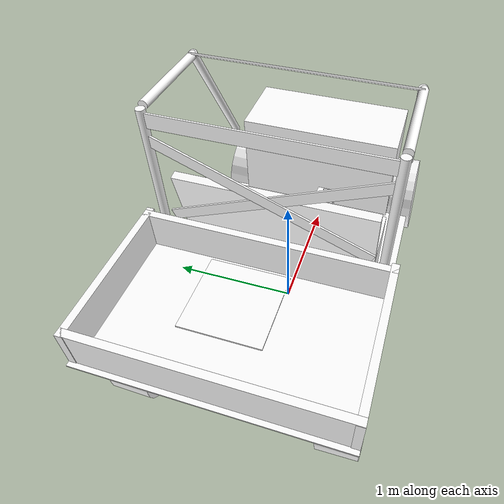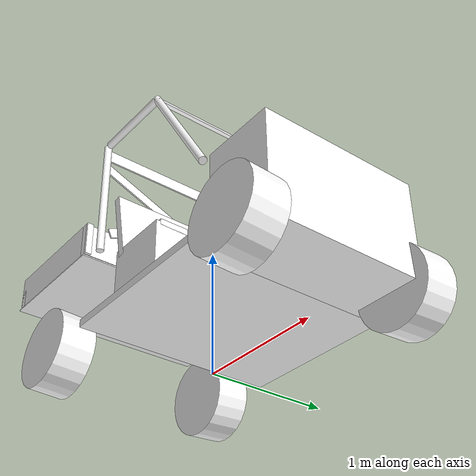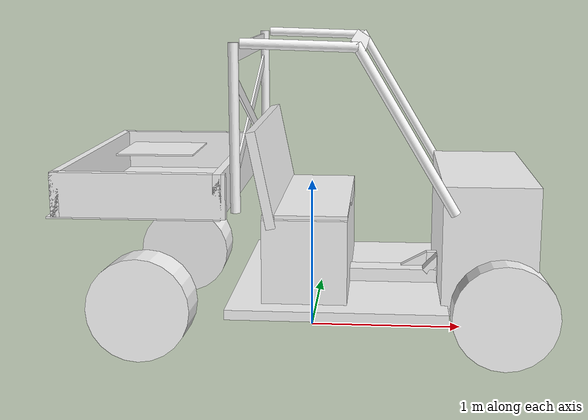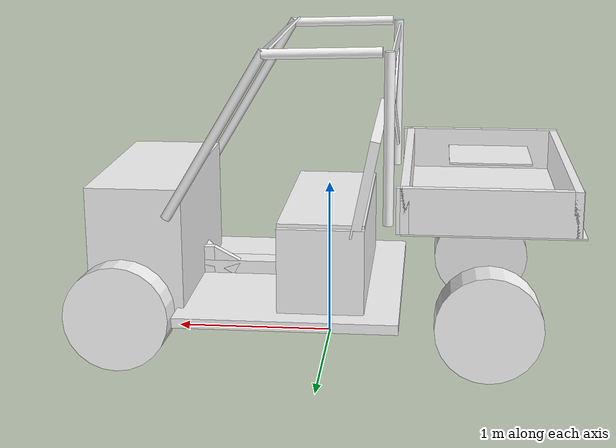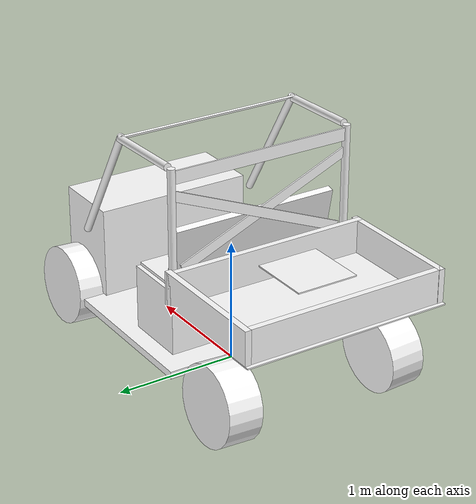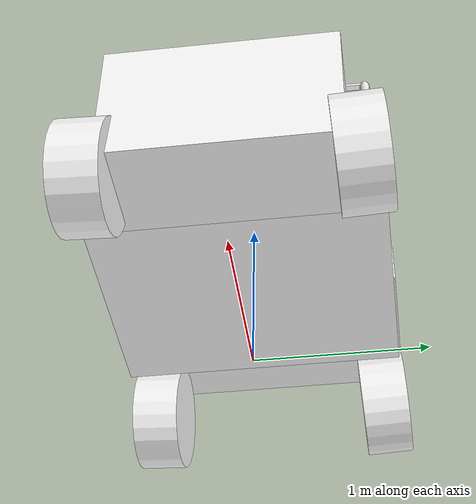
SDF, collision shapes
<?xml version="1.0" ?>
<sdf version="1.5">
  <model name="rover_land_pad">
    <include>
      <name>rover</name>
      <pose>0 0 0 0 0 0</pose>
      <uri>model://rover/model.sdf</uri>
    </include>

    <include>
      <name>land_pad</name>
      <pose>-1.0 0 1.2 0 0 0</pose>
      <uri>model://land_pad/land_pad.sdf</uri>
    </include>

    <joint name="land_pad_joint" type="fixed">
      <parent>rover</parent>
      <child>land_pad</child>
      <axis>
        <xyz>0 1 0</xyz>
      </axis>
    </joint>

  </model>
</sdf>

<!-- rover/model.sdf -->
<sdf version="1.5">
  <model name="rover">
    <static>false</static>
    <link name="base_link">
      <inertial>
        <!-- subtracted wheel weights from dry weight of 771 kg -->
        <!-- http://www.polaris.com/en-us/ranger-utv/side-by-sides/ranger-ev/specifications -->
        <mass>720.0</mass>
        <inertia>
          <ixx>140</ixx>
          <ixy>0.0</ixy>
          <iyy>550</iyy>
          <ixz>0.0</ixz>
          <iyz>0.0</iyz>
          <izz>550</izz>
        </inertia>
        <!-- chassis c.o.g. near lateral/longitudinal center, height of 0.4 m -->
        <pose>0.1 0 0.4 0 0 0</pose>
      </inertial>
      <visual name="visual">
        <pose>0 0 0 0 0 -1.570796</pose>
        <geometry>
          <mesh>
            <uri>model://rover/meshes/polaris.dae</uri>
            <submesh>
              <name>Body</name>
              <center>false</center>
            </submesh>
          </mesh>
        </geometry>
        <material>
          <diffuse>1.0 1.0 1.0</diffuse>
          <specular>1.0 1.0 1.0</specular>
          <pbr>
            <metal>
              <albedo_map>model://rover/materials/textures/RangerXP900_Diffuse.png</albedo_map>
            </metal>
          </pbr>
        </material>
      </visual>
      <collision name="base_link_bottom">
        <pose>0.2 0.0 0.335 0 0 0</pose>
        <geometry>
          <box>
            <size>1.34 1.65746 0.06</size>
          </box>
        </geometry>
      </collision>
      <collision name="cargo_bottom">
        <pose>-1.0 0.0 0.921 0.0 0.0 0.0</pose>
        <geometry>
          <box>
            <size>1.04609 1.6998 0.01</size>
          </box>
        </geometry>
      </collision>
      <collision name="cargo_front">
        <pose>-0.495 0.0 1.06 0.0 0.0 0.0</pose>
        <geometry>
          <box>
            <size>0.05 1.69982 0.27</size>
          </box>
        </geometry>
      </collision>
      <collision name="cargo_back">
        <pose>-1.465 0.0 1.06 0.0 0.0 0.0</pose>
        <geometry>
          <box>
            <size>0.05 1.69982 0.27</size>
          </box>
        </geometry>
      </collision>
      <collision name="cargo_left">
        <pose>-0.97 0.82491 1.06 0.0 0.0 0.0</pose>
        <geometry>
          <box>
            <size>1.04609 0.05 0.27</size>
          </box>
        </geometry>
      </collision>
      <collision name="cargo_right">
        <pose>-0.97 -0.82491 1.06 0.0 0.0 0.0</pose>
        <geometry>
          <box>
            <size>1.04609 0.05 0.27</size>
          </box>
        </geometry>
      </collision>
      <collision name="seat">
        <pose>0.0 0.0 0.62 0 0 0</pose>
        <geometry>
          <box>
            <size>0.52167 1.37206 0.53369</size>
          </box>
        </geometry>
        <surface>
          <contact>
            <ode>
              <min_depth>0.01</min_depth>
            </ode>
          </contact>
        </surface>
      </collision>
      <collision name="mud_seat">
        <pose>0.0 0.0 0.86 0 0 0</pose>
        <geometry>
          <box>
            <size>0.52167 1.30 0.1</size>
          </box>
        </geometry>
        <surface>
          <contact>
            <collide_without_contact>true</collide_without_contact>
          </contact>
        </surface>
      </collision>
      <sensor name="seat_contact" type="contact">
        <always_on>true</always_on>
        <update_rate>1000</update_rate>
        <contact>
          <collision>mud_seat</collision>
        </contact>
      </sensor>
      <collision name="seat_back">
        <pose>-0.26 0.0 1.125 0.0 -0.2 0.0</pose>
        <geometry>
          <box>
            <size>0.06 1.37206 0.6</size>
          </box>
        </geometry>
      </collision>
      <collision name="engine">
        <pose>1.12 0.0 0.7 0.0 0.0 0.0</pose>
        <geometry>
          <box>
            <size>0.58 1.3 0.8</size>
          </box>
        </geometry>
      </collision>
      <collision name="rollcage_top_left">
        <pose>-0.02 0.76 1.936 0 1.60 0</pose>
        <geometry>
          <cylinder>
            <radius>0.03</radius>
            <length>0.68</length>
          </cylinder>
        </geometry>
      </collision>
      <collision name="rollcage_top_right">
        <pose>-0.02 -0.76 1.936 0 1.60 0</pose>
        <geometry>
          <cylinder>
            <radius>0.03</radius>
            <length>0.68</length>
          </cylinder>
        </geometry>
      </collision>
      <collision name="rollcage_top_front">
        <pose>0.315 0.0 1.93 0 -1.0 0</pose>
        <geometry>
          <box>
            <size>0.01299 1.54 0.10226</size>
          </box>
        </geometry>
      </collision>
      <collision name="rollcage_top_back">
        <pose>-0.410 0.0 1.88 0 0 0</pose>
        <geometry>
          <box>
            <size>0.01299 1.54 0.10226</size>
          </box>
        </geometry>
      </collision>
      <collision name="rollcage_front_left">
        <pose>0.602 0.755 1.45 0 -0.54 0</pose>
        <geometry>
          <cylinder>
            <radius>0.03</radius>
            <length>1.15</length>
          </cylinder>
        </geometry>
      </collision>
      <collision name="rollcage_front_right">
        <pose>0.602 -0.755 1.45 0 -0.54 0</pose>
        <geometry>
          <cylinder>
            <radius>0.03</radius>
            <length>1.15</length>
          </cylinder>
        </geometry>
      </collision>
      <collision name="rollcage_back_left">
        <pose>-0.4 0.755 1.45 0 0 0</pose>
        <geometry>
          <cylinder>
            <radius>0.03</radius>
            <length>1.00</length>
          </cylinder>
        </geometry>
      </collision>
      <collision name="rollcage_back_right">
        <pose>-0.4 -0.755 1.45 0 0 0</pose>
        <geometry>
          <cylinder>
            <radius>0.03</radius>
            <length>1.00</length>
          </cylinder>
        </geometry>
      </collision>
      <collision name="rollcage_X_1">
        <pose>-0.411 0.04 1.445 0.397 0 0</pose>
        <geometry>
          <box>
            <size>0.01392 1.557245 0.078</size>
          </box>
        </geometry>
      </collision>
      <collision name="rollcage_X_2">
        <pose>-0.40 -0.04 1.445 -0.397 0 0</pose>
        <geometry>
          <box>
            <size>0.01392 1.557245 0.078</size>
          </box>
        </geometry>
      </collision>
      <collision name="central_hump1_collision">
        <pose>0.55 -0.1 0.4 0 0 0</pose>
        <geometry>
          <box>
            <size>0.6 0.15 0.1</size>
          </box>
        </geometry>
      </collision>
      <collision name="central_hump2_collision">
        <pose>0.7 -0.05 0.45 0 -0.5 0</pose>
        <geometry>
          <box>
            <size>0.20 0.05 0.1</size>
          </box>
        </geometry>
      </collision>
      <collision name="central_hump3_collision">
        <pose>0.798 -0.125 0.478 0 -0.8 0</pose>
        <geometry>
          <box>
            <size>0.129 0.1 0.05</size>
          </box>
        </geometry>
      </collision>
      <collision name="central_hump4_collision">
        <pose>0.8135 -0.05 0.45 0 0 0</pose>
        <geometry>
          <box>
            <size>0.10 0.05 0.1835</size>
          </box>
        </geometry>
      </collision>
      <collision name="central_hump5_collision">
        <pose>0.84 -0.125 0.45 0 0 0</pose>
        <geometry>
          <box>
            <size>0.03 0.1 0.1835</size>
          </box>
        </geometry>
      </collision>
      <collision name="central_hump6_collision">
        <pose>0.82 -0.125 0.475 0 0 0</pose>
        <geometry>
          <box>
            <size>0.03 0.1 0.05</size>
          </box>
        </geometry>
      </collision>
      <visual name="cargo_visual">
        <pose>-1.0 0 1.03230 0 0 -1.5707</pose>
        <geometry>
          <mesh>
            <uri>model://rover/meshes/polaris.dae</uri>
            <submesh>
              <name>Bed</name>
              <center>true</center>
            </submesh>
          </mesh>
        </geometry>
        <material>
          <diffuse>1.0 1.0 1.0</diffuse>
          <specular>1.0 1.0 1.0</specular>
          <pbr>
            <metal>
              <albedo_map>model://rover/materials/textures/RangerXP900_Diffuse.png</albedo_map>
            </metal>
          </pbr>
        </material>
      </visual>
      <visual name="tailgate_visual">
        <pose>-1.492 0 1.03 0 0 -1.5707</pose>
        <geometry>
          <mesh>
            <uri>model://rover/meshes/polaris.dae</uri>
            <submesh>
              <name>Tail_Gate</name>
              <center>true</center>
            </submesh>
          </mesh>
        </geometry>
        <material>
          <diffuse>1.0 1.0 1.0</diffuse>
          <specular>1.0 1.0 1.0</specular>
          <pbr>
            <metal>
              <albedo_map>model://rover/materials/textures/RangerXP900_Diffuse.png</albedo_map>
            </metal>
          </pbr>
        </material>
      </visual>
      <visual name="front_left_brake_visual">
        <pose>1.12 -0.57488 0.35516 3.1415 0 1.5707</pose>
        <geometry>
          <mesh>
            <uri>model://rover/meshes/polaris.dae</uri>
            <submesh>
              <name>Brake_Front_Left</name>
              <center>true</center>
            </submesh>
          </mesh>
        </geometry>
        <material>
          <diffuse>1.0 1.0 1.0</diffuse>
          <specular>1.0 1.0 1.0</specular>
          <pbr>
            <metal>
              <albedo_map>model://rover/materials/textures/RangerXP900_Diffuse.png</albedo_map>
            </metal>
          </pbr>
        </material>
      </visual>
      <visual name="front_right_brake_visual">
        <pose>1.12 0.57488 0.35516 3.1415 0 1.5707</pose>
        <geometry>
          <mesh>
            <uri>model://rover/meshes/polaris.dae</uri>
            <submesh>
              <name>Brake_Front_Right</name>
              <center>true</center>
            </submesh>
          </mesh>
        </geometry>
        <material>
          <diffuse>1.0 1.0 1.0</diffuse>
          <specular>1.0 1.0 1.0</specular>
          <pbr>
            <metal>
              <albedo_map>model://rover/materials/textures/RangerXP900_Diffuse.png</albedo_map>
            </metal>
          </pbr>
        </material>
      </visual>
      <visual name="central_hump1">
        <pose>0.55 -0.1 0.4 0 0 0</pose>
        <geometry>
          <box>
            <size>0.6 0.15 0.1</size>
          </box>
        </geometry>
        <material>
          <script>
            <uri>file://media/materials/scripts/gazebo.material</uri>
            <name>Gazebo/DarkGrey</name>
          </script>
        </material>
      </visual>
      <visual name="central_hump2">
        <pose>0.7 -0.05 0.45 0 -0.5 0</pose>
        <geometry>
          <box>
            <size>0.20 0.05 0.1</size>
          </box>
        </geometry>
        <material>
          <script>
            <uri>file://media/materials/scripts/gazebo.material</uri>
            <name>Gazebo/DarkGrey</name>
          </script>
        </material>
      </visual>
      <visual name="central_hump3">
        <pose>0.798 -0.125 0.478 0 -0.8 0</pose>
        <geometry>
          <box>
            <size>0.129 0.1 0.05</size>
          </box>
        </geometry>
        <material>
          <script>
            <uri>file://media/materials/scripts/gazebo.material</uri>
            <name>Gazebo/DarkGrey</name>
          </script>
        </material>
      </visual>
      <visual name="central_hump4">
        <pose>0.8135 -0.05 0.45 0 0 0</pose>
        <geometry>
          <box>
            <size>0.10 0.05 0.1835</size>
          </box>
        </geometry>
        <material>
          <script>
            <uri>file://media/materials/scripts/gazebo.material</uri>
            <name>Gazebo/DarkGrey</name>
          </script>
        </material>
      </visual>
      <visual name="central_hump5">
        <pose>0.84 -0.125 0.45 0 0 0</pose>
        <geometry>
          <box>
            <size>0.03 0.1 0.1835</size>
          </box>
        </geometry>
        <material>
          <script>
            <uri>file://media/materials/scripts/gazebo.material</uri>
            <name>Gazebo/DarkGrey</name>
          </script>
        </material>
      </visual>
      <visual name="central_hump6">
        <pose>0.82 -0.125 0.475 0 0 0</pose>
        <geometry>
          <box>
            <size>0.03 0.1 0.05</size>
          </box>
        </geometry>
        <material>
          <script>
            <uri>file://media/materials/scripts/gazebo.material</uri>
            <name>Gazebo/DarkGrey</name>
          </script>
        </material>
      </visual>
    </link>
    <link name='rover/imu_link'>
      <pose>0 0 0 0 0 0</pose>
      <inertial>
        <pose>0 0 0 0 0 0</pose>
        <mass>0.015</mass>
        <inertia>
          <ixx>1e-05</ixx>
          <ixy>0</ixy>
          <ixz>0</ixz>
          <iyy>1e-05</iyy>
          <iyz>0</iyz>
          <izz>1e-05</izz>
        </inertia>
      </inertial>
    </link>
    <joint name='rover/imu_joint' type='revolute'>
      <child>rover/imu_link</child>
      <parent>base_link</parent>
      <axis>
        <xyz>1 0 0</xyz>
        <limit>
          <lower>0</lower>
          <upper>0</upper>
          <effort>0</effort>
          <velocity>0</velocity>
        </limit>
        <dynamics>
          <spring_reference>0</spring_reference>
          <spring_stiffness>0</spring_stiffness>
        </dynamics>
        <use_parent_model_frame>1</use_parent_model_frame>
      </axis>
    </joint>
    <link name="front_left_wheel">
      <pose>1.20223 0.71562 0.34697 -1.52 0.0 0.0</pose>
      <inertial>
        <mass>12</mass>
        <!-- estimated from http://www.rzrforums.net/wheels-tires/1729-tire-wheel-weights-most-sizes.html -->
        <inertia>
          <ixx>0.5</ixx>
          <ixy>0.0</ixy>
          <iyy>0.5</iyy>
          <ixz>0.0</ixz>
          <iyz>0.0</iyz>
          <izz>1.0</izz>
        </inertia>
      </inertial>
      <collision name="collision">
        <geometry>
          <cylinder>
            <radius>0.3175</radius>
            <length>0.2794</length>
          </cylinder>
        </geometry>
        <max_contacts>1</max_contacts>
        <surface>
          <friction>
            <ode>
              <mu>1.0</mu>
              <mu2>1.0</mu2>
              <fdir1>0 0 1</fdir1>
              <slip1>0.0</slip1>
              <slip2>0.0</slip2>
            </ode>
          </friction>
          <contact>
            <ode>
              <min_depth>0.005</min_depth>
              <kp>1e8</kp>
            </ode>
          </contact>
        </surface>
      </collision>
      <visual name="tire_visual">
        <pose>0 0 0 3.14159 1.570796 0</pose>
        <geometry>
          <mesh>
            <uri>model://rover/meshes/polaris.dae</uri>
            <scale>1.003700111 0.886200464 0.886200464</scale>
            <submesh>
              <name>Wheel_Front_Left</name>
              <center>true</center>
            </submesh>
          </mesh>
        </geometry>
        <material>
          <diffuse>1.0 1.0 1.0</diffuse>
          <specular>1.0 1.0 1.0</specular>
          <pbr>
            <metal>
              <albedo_map>model://rover/materials/textures/RangerXP900_Diffuse.png</albedo_map>
            </metal>
          </pbr>
        </material>
      </visual>
    </link>
    <link name="front_right_wheel">
      <pose>1.20223 -0.71562 0.34697 1.52 0.0 0.0</pose>
      <inertial>
        <mass>12</mass>
        <!-- estimated from http://www.rzrforums.net/wheels-tires/1729-tire-wheel-weights-most-sizes.html -->
        <inertia>
          <ixx>0.5</ixx>
          <ixy>0.0</ixy>
          <iyy>0.5</iyy>
          <ixz>0.0</ixz>
          <iyz>0.0</iyz>
          <izz>1.0</izz>
        </inertia>
      </inertial>
      <collision name="collision">
        <geometry>
          <cylinder>
            <radius>0.3175</radius>
            <length>0.2794</length>
          </cylinder>
        </geometry>
        <max_contacts>1</max_contacts>
        <surface>
          <friction>
            <ode>
              <mu>1.0</mu>
              <mu2>1.0</mu2>
              <fdir1>0 0 1</fdir1>
              <slip1>0.0</slip1>
              <slip2>0.0</slip2>
            </ode>
          </friction>
          <contact>
            <ode>
              <min_depth>0.005</min_depth>
              <kp>1e8</kp>
            </ode>
          </contact>
        </surface>
      </collision>
      <visual name="visual">
        <pose>0 0 0 0 -1.570796 0</pose>
        <geometry>
          <mesh>
            <uri>model://rover/meshes/polaris.dae</uri>
            <scale>1.003700111 0.886200464 0.886200464</scale>
            <submesh>
              <name>Wheel_Front_Right</name>
              <center>true</center>
            </submesh>
          </mesh>
        </geometry>
        <material>
          <diffuse>1.0 1.0 1.0</diffuse>
          <specular>1.0 1.0 1.0</specular>
          <pbr>
            <metal>
              <albedo_map>model://rover/materials/textures/RangerXP900_Diffuse.png</albedo_map>
            </metal>
          </pbr>
        </material>
      </visual>
    </link>
    <link name="rear_left_wheel">
      <pose>-0.99377 0.71562 0.34697 -1.52 0.0 0.0</pose>
      <inertial>
        <mass>12</mass>
        <!-- estimated from http://www.rzrforums.net/wheels-tires/1729-tire-wheel-weights-most-sizes.html -->
        <inertia>
          <ixx>0.5</ixx>
          <ixy>0.0</ixy>
          <iyy>0.5</iyy>
          <ixz>0.0</ixz>
          <iyz>0.0</iyz>
          <izz>1.0</izz>
        </inertia>
      </inertial>
      <collision name="collision">
        <geometry>
          <cylinder>
            <radius>0.3175</radius>
            <length>0.2794</length>
          </cylinder>
        </geometry>
        <max_contacts>1</max_contacts>
        <surface>
          <friction>
            <ode>
              <mu>1.0</mu>
              <mu2>1.0</mu2>
              <fdir1>0 0 1</fdir1>
              <slip1>0.0</slip1>
              <slip2>0.0</slip2>
            </ode>
          </friction>
          <contact>
            <ode>
              <min_depth>0.005</min_depth>
              <kp>1e8</kp>
            </ode>
          </contact>
        </surface>
      </collision>
      <visual name="visual">
        <pose>0 0 0 0 -1.570796 0</pose>
        <geometry>
          <mesh>
            <uri>model://rover/meshes/polaris.dae</uri>
            <scale>1.003700111 0.886200464 0.886200464</scale>
            <submesh>
              <name>Wheels_Rear_Left</name>
              <center>true</center>
            </submesh>
          </mesh>
        </geometry>
        <material>
          <diffuse>1.0 1.0 1.0</diffuse>
          <specular>1.0 1.0 1.0</specular>
          <pbr>
            <metal>
              <albedo_map>model://rover/materials/textures/RangerXP900_Diffuse.png</albedo_map>
            </metal>
          </pbr>
        </material>
      </visual>
    </link>
    <link name="rear_right_wheel">
      <pose>-0.99377 -0.71562 0.34697 1.52 0.0 0.0</pose>
      <inertial>
        <mass>12</mass>
        <!-- estimated from http://www.rzrforums.net/wheels-tires/1729-tire-wheel-weights-most-sizes.html -->
        <inertia>
          <ixx>0.5</ixx>
          <ixy>0.0</ixy>
          <iyy>0.5</iyy>
          <ixz>0.0</ixz>
          <iyz>0.0</iyz>
          <izz>1.0</izz>
        </inertia>
      </inertial>
      <collision name="collision">
        <geometry>
          <cylinder>
            <radius>0.3175</radius>
            <length>0.2794</length>
          </cylinder>
        </geometry>
        <max_contacts>1</max_contacts>
        <surface>
          <friction>
            <ode>
              <mu>1.0</mu>
              <mu2>1.0</mu2>
              <fdir1>0 0 1</fdir1>
              <slip1>0.0</slip1>
              <slip2>0.0</slip2>
            </ode>
          </friction>
          <contact>
            <ode>
              <min_depth>0.005</min_depth>
              <kp>1e8</kp>
            </ode>
          </contact>
        </surface>
      </collision>
      <visual name="visual">
        <pose>0 0 0 0 -1.570796 0</pose>
        <geometry>
          <mesh>
            <uri>model://rover/meshes/polaris.dae</uri>
            <scale>1.003700111 0.886200464 0.886200464</scale>
            <submesh>
              <name>Wheels_Rear_Right</name>
              <center>true</center>
            </submesh>
          </mesh>
        </geometry>
        <material>
          <diffuse>1.0 1.0 1.0</diffuse>
          <specular>1.0 1.0 1.0</specular>
          <pbr>
            <metal>
              <albedo_map>model://rover/materials/textures/RangerXP900_Diffuse.png</albedo_map>
            </metal>
          </pbr>
        </material>
      </visual>
    </link>
    <link name="front_right_wheel_steering_block">
      <pose>1.20223 -0.5 0.35515 1.570796 0.0 0.0</pose>
      <inertial>
        <mass>1</mass>
        <inertia>
          <ixx>0.01</ixx>
          <ixy>0.0</ixy>
          <iyy>0.01</iyy>
          <ixz>0.0</ixz>
          <iyz>0.0</iyz>
          <izz>0.01</izz>
        </inertia>
      </inertial>
      <collision name="collision">
        <geometry>
          <cylinder>
            <radius>0.05</radius>
            <length>0.01</length>
          </cylinder>
        </geometry>
      </collision>
    </link>
    <link name="front_left_wheel_steering_block">
      <pose>1.20223 0.5 0.35515 1.570796 0.0 0.0</pose>
      <inertial>
        <mass>1</mass>
        <inertia>
          <ixx>0.01</ixx>
          <ixy>0.0</ixy>
          <iyy>0.01</iyy>
          <ixz>0.0</ixz>
          <iyz>0.0</iyz>
          <izz>0.01</izz>
        </inertia>
      </inertial>
      <collision name="collision">
        <geometry>
          <cylinder>
            <radius>0.05</radius>
            <length>0.01</length>
          </cylinder>
        </geometry>
      </collision>
    </link>
    <joint type="revolute" name="front_left_steering_joint">
      <child>front_left_wheel_steering_block</child>
      <parent>base_link</parent>
      <axis>
        <xyz>0 0 1</xyz>
        <dynamics>
          <damping>50.0</damping>
        </dynamics>
        <use_parent_model_frame>true</use_parent_model_frame>
      </axis>
      <physics>
        <ode>
          <cfm_damping>1</cfm_damping>
          <limit>
            <cfm>0.000000</cfm>
            <erp>0.900000</erp>
          </limit>
        </ode>
      </physics>
    </joint>
    <joint type="revolute" name="front_left_wheel_joint">
      <child>front_left_wheel</child>
      <parent>front_left_wheel_steering_block</parent>
      <axis>
        <xyz>0 1 0.05</xyz>
        <use_parent_model_frame>true</use_parent_model_frame>
      </axis>
    </joint>
    <joint type="revolute" name="front_right_steering_joint">
      <child>front_right_wheel_steering_block</child>
      <parent>base_link</parent>
      <axis>
        <xyz>0 0 1</xyz>
        <dynamics>
          <damping>50.0</damping>
        </dynamics>
        <use_parent_model_frame>true</use_parent_model_frame>
      </axis>
      <physics>
        <ode>
          <cfm_damping>1</cfm_damping>
          <limit>
            <cfm>0.000000</cfm>
            <erp>0.900000</erp>
          </limit>
        </ode>
      </physics>
    </joint>
    <joint type="revolute" name="front_right_wheel_joint">
      <child>front_right_wheel</child>
      <parent>front_right_wheel_steering_block</parent>
      <axis>
        <xyz>0 1 -0.05</xyz>
        <use_parent_model_frame>true</use_parent_model_frame>
      </axis>
    </joint>
    <joint type="revolute" name="rear_left_wheel_joint">
      <child>rear_left_wheel</child>
      <parent>base_link</parent>
      <axis>
        <xyz>0 1 0.05</xyz>
        <use_parent_model_frame>true</use_parent_model_frame>
      </axis>
    </joint>
    <joint type="revolute" name="rear_right_wheel_joint">
      <pose>0.0 0.0 -0.1 0 0 0</pose>
      <child>rear_right_wheel</child>
      <parent>base_link</parent>
      <axis>
        <xyz>0 1 -0.05</xyz>
        <use_parent_model_frame>true</use_parent_model_frame>
      </axis>
    </joint>

    <plugin
        filename="gz-sim-joint-controller-system"
        name="gz::sim::systems::JointController">
        <joint_name>front_left_wheel_joint</joint_name>
        <joint_name>front_right_wheel_joint</joint_name>
        <use_force_commands>false</use_force_commands>
        <use_actuator_msg>false</use_actuator_msg>
        <actuator_number></actuator_number>
        <p_gain>10.0</p_gain>
        <i_gain>1.0</i_gain>
        <d_gain>0.1</d_gain>
        <i_max>20.0</i_max>
        <i_min>-20.0</i_min>
        <cmd_max>100.0</cmd_max>
        <cmd_min>-100.0</cmd_min>
        <cmd_offset>0.0</cmd_offset>
        <initial_velocity>0.0</initial_velocity>
        <topic>/rover/cmd_vel</topic>
        <sub_topic></sub_topic>
    </plugin>

    <plugin
        filename="gz-sim-joint-position-controller-system"
        name="gz::sim::systems::JointPositionController">
        <joint_name>front_left_steering_joint</joint_name>
        <joint_name>front_right_steering_joint</joint_name>
        <joint_index>0</joint_index>
        <use_velocity_commands>true</use_velocity_commands>
        <use_actuator_msg>false</use_actuator_msg>
        <actuator_number></actuator_number>
        <p_gain>1.0</p_gain>
        <i_gain>0.1</i_gain>
        <d_gain>0.01</d_gain>
        <i_max>0.3</i_max>
        <i_min>-0.3</i_min>
        <cmd_max>0.7</cmd_max>
        <cmd_min>-0.7</cmd_min>
        <cmd_offset>0.0</cmd_offset>
        <initial_position>0.0</initial_position>
        <topic>/rover/cmd_steer</topic>
        <sub_topic></sub_topic>
    </plugin>

    <!-- Moving Forward-->
    <plugin filename="gz-sim-triggered-publisher-system"
            name="gz::sim::systems::TriggeredPublisher">
        <input type="gz.msgs.Int32" topic="/keyboard/keypress">
            <match field="data">16777235</match>
        </input>
        <output type="gz.msgs.Double" topic="/rover/cmd_vel">
            data: 2.0
        </output>
        <output type="gz.msgs.Double" topic="/rover/cmd_steer">
            data: 0.0
        </output>
    </plugin>

    <!-- Moving Backword-->
    <plugin filename="gz-sim-triggered-publisher-system"
            name="gz::sim::systems::TriggeredPublisher">
        <input type="gz.msgs.Int32" topic="/keyboard/keypress">
            <match field="data">16777237</match>
        </input>
        <output type="gz.msgs.Double" topic="/rover/cmd_vel">
            data: -2.0
        </output>
        <output type="gz.msgs.Double" topic="/rover/cmd_steer">
            data: 0.0
        </output>
    </plugin>

    <!-- Turn Right-->
    <plugin filename="gz-sim-triggered-publisher-system"
            name="gz::sim::systems::TriggeredPublisher">
        <input type="gz.msgs.Int32" topic="/keyboard/keypress">
            <match field="data">16777236</match>
        </input>
        <output type="gz.msgs.Double" topic="/rover/cmd_steer">
            data: -0.4
        </output>
    </plugin>

    <!-- Turn Left-->
    <plugin filename="gz-sim-triggered-publisher-system"
            name="gz::sim::systems::TriggeredPublisher">
        <input type="gz.msgs.Int32" topic="/keyboard/keypress">
            <match field="data">16777234</match>
        </input>
        <output type="gz.msgs.Double" topic="/rover/cmd_steer">
            data: 0.4
        </output>
    </plugin>

    <!-- Stop-->
    <plugin filename="gz-sim-triggered-publisher-system"
            name="gz::sim::systems::TriggeredPublisher">
        <input type="gz.msgs.Int32" topic="/keyboard/keypress">
            <match field="data">83</match>
        </input>
        <output type="gz.msgs.Double" topic="/rover/cmd_vel">
            data: 0.0
        </output>
        <output type="gz.msgs.Double" topic="/rover/cmd_steer">
            data: 0.0
        </output>
    </plugin>

  </model>
</sdf>

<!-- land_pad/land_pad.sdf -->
<sdf version="1.5">
  <model name="land_pad">
    <pose>0.0 0.0 0.06 0 0 0</pose>
    <link name="link">
        <inertial>
        <pose>0 0 0 0 0 0</pose>
        <mass>10.0</mass>
        <inertia>
          <ixx>0.01</ixx>
          <ixy>0</ixy>
          <ixz>0</ixz>
          <iyy>0.01</iyy>
          <iyz>0</iyz>
          <izz>0.01</izz>
        </inertia>
      </inertial>
      <kinematic>true</kinematic>
      <collision name="collision">
        <geometry>
          <box>
            <size>0.5 0.5 0.01</size>
          </box>
        </geometry>
        <surface>
          <friction>
            <ode>
              <mu>1.0</mu>
              <mu2>1.0</mu2>
              <fdir1>1 0 0</fdir1>
            </ode>
          </friction>
          <contact>
            <ode>
              <kp>1e+12</kp>
              <kd>1</kd>
              <max_vel>10</max_vel>
              <min_depth>0.003</min_depth>
            </ode>
          </contact>
        </surface>
      </collision>
      <visual name="visual">
        <geometry>
          <box>
            <size>0.5 0.5 0.02</size>
          </box>
        </geometry>
        <!-- Aruco marker as the land pad structure -->
        <material>
          <diffuse>1.0 1.0 1.0</diffuse>
          <specular>1.0 1.0 1.0</specular>
          <pbr>
            <metal>
              <albedo_map>model://land_pad/materials/textures/aruco_marker_0.png</albedo_map>
            </metal>
          </pbr>
        </material>
      </visual>
    </link>
  </model>
</sdf>
